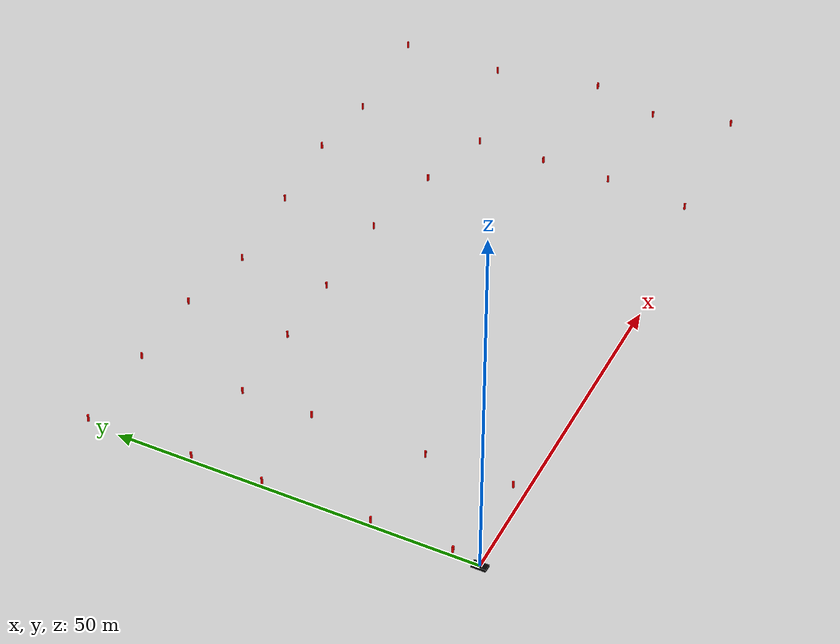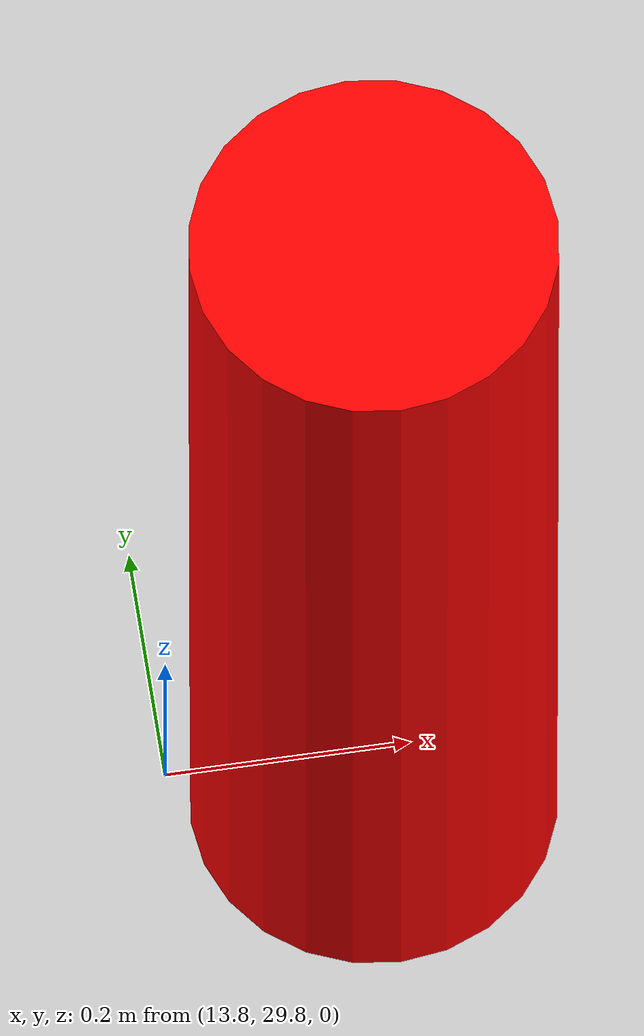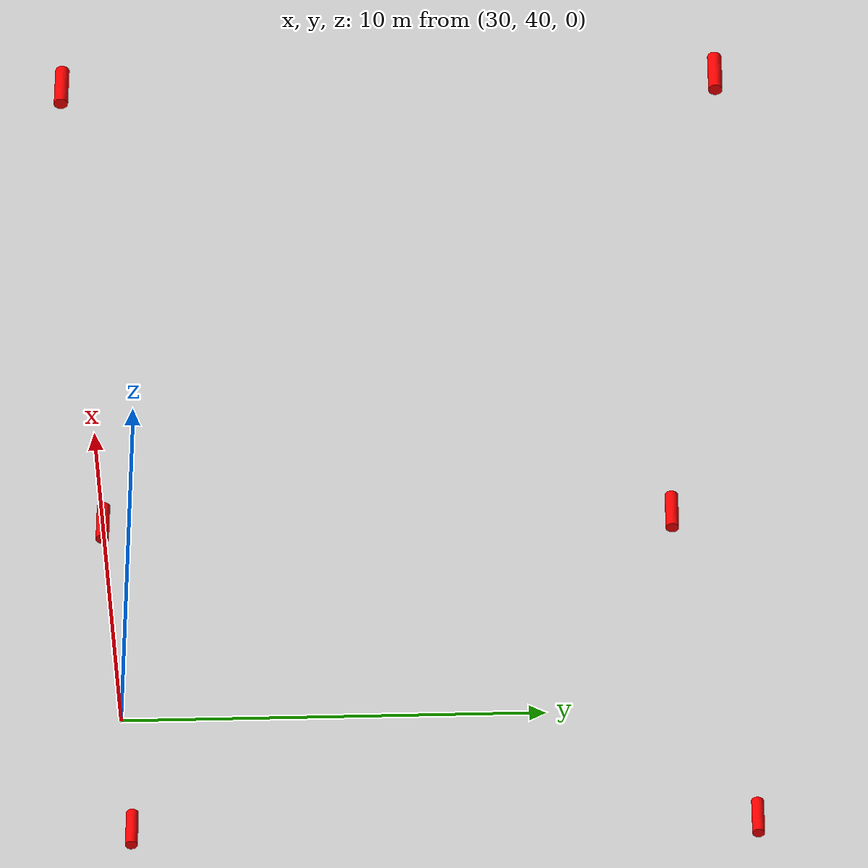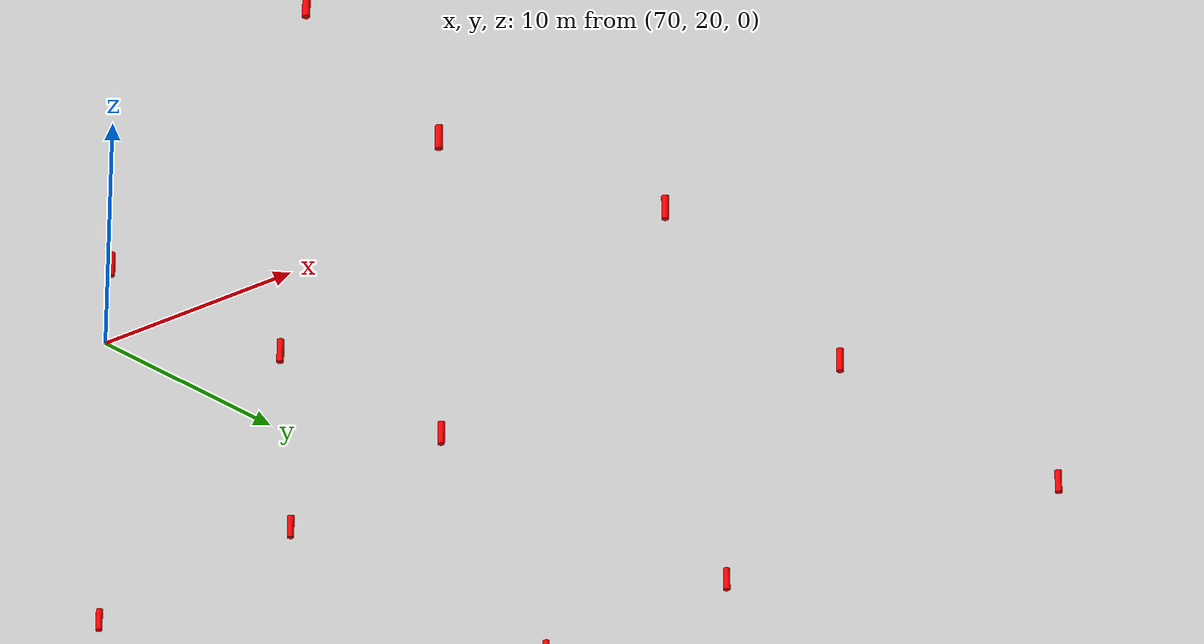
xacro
<?xml version="1.0"?>
<robot name="rbo" xmlns:xacro="http://www.ros.org/wiki/xacro">
    <!-- variables -->
    <xacro:property name="PI" value="3.1415926"/>
    <xacro:property name="base_length" value="2.0"/>
    <xacro:property name="base_width"  value="1.0"/>
    <xacro:property name="base_height" value="0.4"/>
    <xacro:property name="wheel_length" value="1.00"/>
    <xacro:property name="wheel_radius" value="0.15"/>

    <material name="red">
        <color rgba="1 0 0 1"/>
    </material>

    <material name="black">
        <color rgba="0 0 0 1"/>
    </material>

    <!-- geometry -->
    <xacro:macro name="cylinder_geometry" params="l r">
        <geometry>
            <cylinder length="${l}" radius="${r}"/>
        </geometry>
    </xacro:macro>

    <xacro:macro name="origin_macro" params="xyz rpy">
        <origin xyz="${xyz}" rpy="${rpy}"/>
    </xacro:macro>

    <xacro:macro name="box_geometry" params="l w h">
        <geometry>
            <box size="${w} ${l} ${h}"/>
        </geometry>
    </xacro:macro>

    <!-- link -->
    <!-- world link -->
    <link name="base_link"/>

    <!-- joint -->
    <xacro:macro name="world_wheel_joint" params="wheel_name x y">
        <link name="${wheel_name}">
            <visual>
                <xacro:cylinder_geometry l="${wheel_length}" r="${wheel_radius}"/>
                <xacro:origin_macro xyz="0 0 0" rpy="0 0 0"/>
                <material name="red"/>
            </visual>
        </link>

        <joint name="world_${wheel_name}" type="fixed">
            <origin xyz="${x} ${y} 0.0" rpy="0 0 0"/>
            <parent link="base_link"/>
            <child link="${wheel_name}"/>
        </joint>
    </xacro:macro>

    <xacro:world_wheel_joint wheel_name="pilar1" x="1" y="4"/>
    <xacro:world_wheel_joint wheel_name="pilar2" x="14" y="2"/>
    <xacro:world_wheel_joint wheel_name="pilar3" x="1" y="15"/>
    <xacro:world_wheel_joint wheel_name="pilar4" x="14" y="14"/>
    <xacro:world_wheel_joint wheel_name="pilar5" x="1" y="30"/>
    <xacro:world_wheel_joint wheel_name="pilar6" x="14" y="30"/>
    <xacro:world_wheel_joint wheel_name="pilar7" x="1" y="40"/>
    <xacro:world_wheel_joint wheel_name="pilar8" x="14" y="40"/>
    <xacro:world_wheel_joint wheel_name="pilar9" x="1" y="55"/>
    <xacro:world_wheel_joint wheel_name="pilar10" x="14" y="55"/>
    <xacro:world_wheel_joint wheel_name="pilar11" x="26" y="40"/>
    <xacro:world_wheel_joint wheel_name="pilar12" x="26" y="55"/>
    <xacro:world_wheel_joint wheel_name="pilar13" x="37" y="40"/>
    <xacro:world_wheel_joint wheel_name="pilar14" x="37" y="53"/>
    <xacro:world_wheel_joint wheel_name="pilar15" x="51" y="40"/>
    <xacro:world_wheel_joint wheel_name="pilar16" x="51" y="54"/>
    <xacro:world_wheel_joint wheel_name="pilar17" x="64" y="38"/>
    <xacro:world_wheel_joint wheel_name="pilar18" x="64" y="55"/>
    <xacro:world_wheel_joint wheel_name="pilar19" x="75" y="54"/>
    <xacro:world_wheel_joint wheel_name="pilar20" x="92" y="55"/>
    <xacro:world_wheel_joint wheel_name="pilar21" x="75" y="35"/>
    <xacro:world_wheel_joint wheel_name="pilar22" x="92" y="40"/>
    <xacro:world_wheel_joint wheel_name="pilar23" x="75" y="25"/>
    <xacro:world_wheel_joint wheel_name="pilar24" x="95" y="25"/>
    <xacro:world_wheel_joint wheel_name="pilar25" x="75" y="15"/>
    <xacro:world_wheel_joint wheel_name="pilar26" x="92" y="15"/>
    <xacro:world_wheel_joint wheel_name="pilar27" x="74" y="3"/>
    <xacro:world_wheel_joint wheel_name="pilar28" x="95" y="4"/>

    <link name="car_link">
        <visual>
            <xacro:box_geometry l="${base_length}" w="${base_width}" h="${base_height}"/>
            <xacro:origin_macro xyz="0 0 0" rpy="0 0 0"/>
            <material name="black"/>
        </visual>
    </link>

    <joint name="base_car" type="floating">
        <parent link="base_link"/>
        <child link="car_link"/>
        <origin xyz="0 0 0" rpy="0 0 0"/>
    </joint>
</robot>
